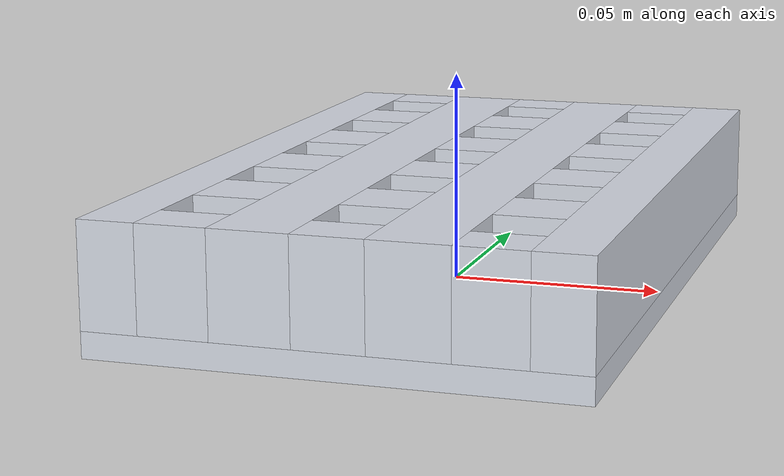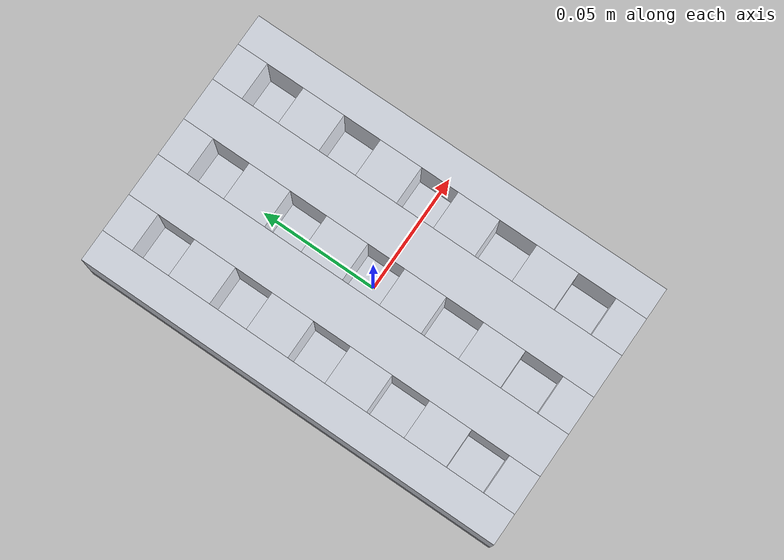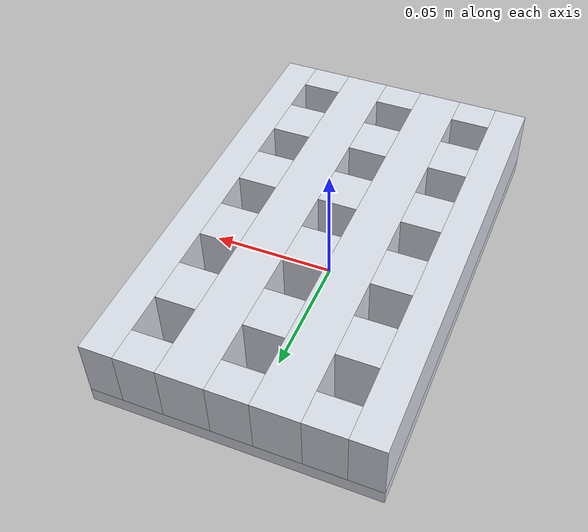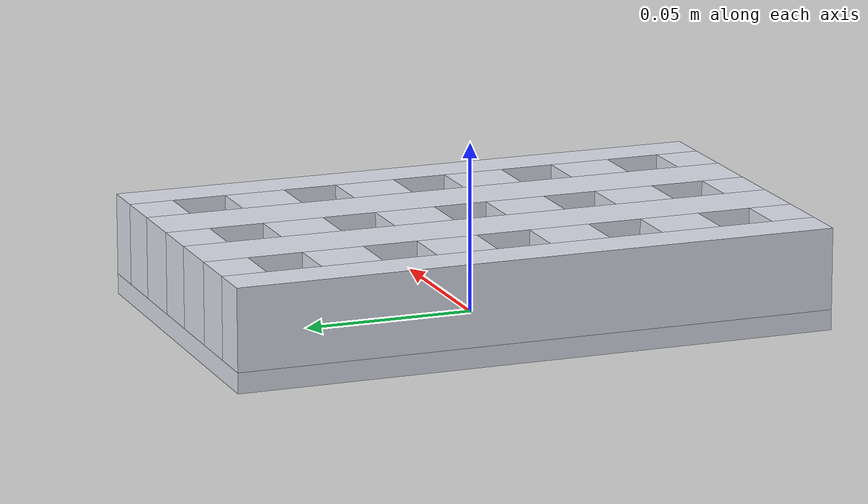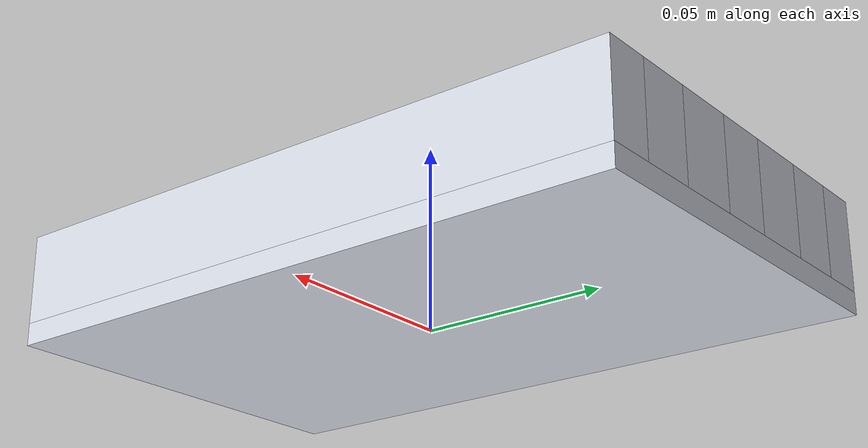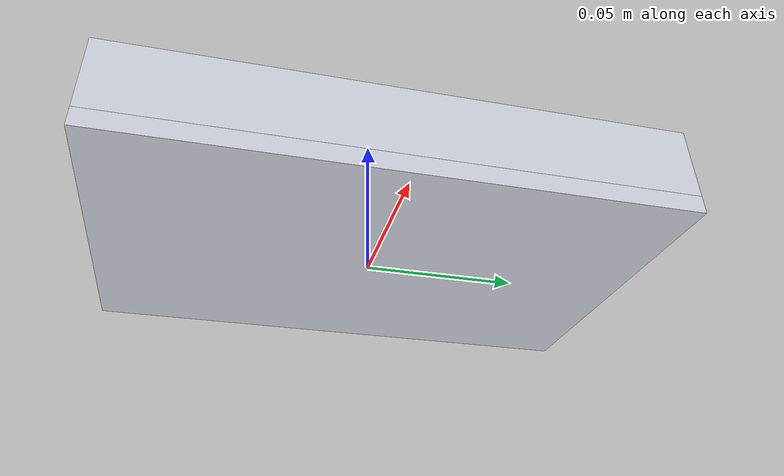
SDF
<?xml version="1.0"?>
<sdf version="1.9">
  <model name="bit_tray">
    <static>true</static>
    <link name="link">
      <inertial>
        <pose>0 0 0.0150 0 0 0</pose>
        <mass>0.3</mass>
        <inertia><ixx>8.146e-04</ixx><iyy>3.250e-04</iyy><izz>1.095e-03</izz><ixy>0</ixy><ixz>0</ixz><iyz>0</iyz></inertia>
      </inertial>
      <collision name="c0"><pose>0.0000 0.0000 0.0030 0 0 0</pose><geometry><box><size>0.1100 0.1780 0.0060</size></box></geometry>
        <surface><friction><ode><mu>0.8</mu><mu2>0.8</mu2></ode></friction></surface>
      </collision>
      <visual name="v0"><pose>0.0000 0.0000 0.0030 0 0 0</pose><geometry><box><size>0.1100 0.1780 0.0060</size></box></geometry>
        <material><ambient>0.72 0.74 0.78 1</ambient><diffuse>0.86 0.88 0.92 1</diffuse><specular>0.3 0.3 0.3 1</specular></material>
      </visual>
      <collision name="c1"><pose>-0.0485 0.0000 0.0180 0 0 0</pose><geometry><box><size>0.0130 0.1780 0.0240</size></box></geometry>
        <surface><friction><ode><mu>0.8</mu><mu2>0.8</mu2></ode></friction></surface>
      </collision>
      <visual name="v1"><pose>-0.0485 0.0000 0.0180 0 0 0</pose><geometry><box><size>0.0130 0.1780 0.0240</size></box></geometry>
        <material><ambient>0.72 0.74 0.78 1</ambient><diffuse>0.86 0.88 0.92 1</diffuse><specular>0.3 0.3 0.3 1</specular></material>
      </visual>
      <collision name="c2"><pose>-0.0170 0.0000 0.0180 0 0 0</pose><geometry><box><size>0.0180 0.1780 0.0240</size></box></geometry>
        <surface><friction><ode><mu>0.8</mu><mu2>0.8</mu2></ode></friction></surface>
      </collision>
      <visual name="v2"><pose>-0.0170 0.0000 0.0180 0 0 0</pose><geometry><box><size>0.0180 0.1780 0.0240</size></box></geometry>
        <material><ambient>0.72 0.74 0.78 1</ambient><diffuse>0.86 0.88 0.92 1</diffuse><specular>0.3 0.3 0.3 1</specular></material>
      </visual>
      <collision name="c3"><pose>0.0170 0.0000 0.0180 0 0 0</pose><geometry><box><size>0.0180 0.1780 0.0240</size></box></geometry>
        <surface><friction><ode><mu>0.8</mu><mu2>0.8</mu2></ode></friction></surface>
      </collision>
      <visual name="v3"><pose>0.0170 0.0000 0.0180 0 0 0</pose><geometry><box><size>0.0180 0.1780 0.0240</size></box></geometry>
        <material><ambient>0.72 0.74 0.78 1</ambient><diffuse>0.86 0.88 0.92 1</diffuse><specular>0.3 0.3 0.3 1</specular></material>
      </visual>
      <collision name="c4"><pose>0.0485 0.0000 0.0180 0 0 0</pose><geometry><box><size>0.0130 0.1780 0.0240</size></box></geometry>
        <surface><friction><ode><mu>0.8</mu><mu2>0.8</mu2></ode></friction></surface>
      </collision>
      <visual name="v4"><pose>0.0485 0.0000 0.0180 0 0 0</pose><geometry><box><size>0.0130 0.1780 0.0240</size></box></geometry>
        <material><ambient>0.72 0.74 0.78 1</ambient><diffuse>0.86 0.88 0.92 1</diffuse><specular>0.3 0.3 0.3 1</specular></material>
      </visual>
      <collision name="c5"><pose>-0.0340 -0.0825 0.0180 0 0 0</pose><geometry><box><size>0.0160 0.0130 0.0240</size></box></geometry>
        <surface><friction><ode><mu>0.8</mu><mu2>0.8</mu2></ode></friction></surface>
      </collision>
      <visual name="v5"><pose>-0.0340 -0.0825 0.0180 0 0 0</pose><geometry><box><size>0.0160 0.0130 0.0240</size></box></geometry>
        <material><ambient>0.72 0.74 0.78 1</ambient><diffuse>0.86 0.88 0.92 1</diffuse><specular>0.3 0.3 0.3 1</specular></material>
      </visual>
      <collision name="c6"><pose>-0.0340 -0.0510 0.0180 0 0 0</pose><geometry><box><size>0.0160 0.0180 0.0240</size></box></geometry>
        <surface><friction><ode><mu>0.8</mu><mu2>0.8</mu2></ode></friction></surface>
      </collision>
      <visual name="v6"><pose>-0.0340 -0.0510 0.0180 0 0 0</pose><geometry><box><size>0.0160 0.0180 0.0240</size></box></geometry>
        <material><ambient>0.72 0.74 0.78 1</ambient><diffuse>0.86 0.88 0.92 1</diffuse><specular>0.3 0.3 0.3 1</specular></material>
      </visual>
      <collision name="c7"><pose>-0.0340 -0.0170 0.0180 0 0 0</pose><geometry><box><size>0.0160 0.0180 0.0240</size></box></geometry>
        <surface><friction><ode><mu>0.8</mu><mu2>0.8</mu2></ode></friction></surface>
      </collision>
      <visual name="v7"><pose>-0.0340 -0.0170 0.0180 0 0 0</pose><geometry><box><size>0.0160 0.0180 0.0240</size></box></geometry>
        <material><ambient>0.72 0.74 0.78 1</ambient><diffuse>0.86 0.88 0.92 1</diffuse><specular>0.3 0.3 0.3 1</specular></material>
      </visual>
      <collision name="c8"><pose>-0.0340 0.0170 0.0180 0 0 0</pose><geometry><box><size>0.0160 0.0180 0.0240</size></box></geometry>
        <surface><friction><ode><mu>0.8</mu><mu2>0.8</mu2></ode></friction></surface>
      </collision>
      <visual name="v8"><pose>-0.0340 0.0170 0.0180 0 0 0</pose><geometry><box><size>0.0160 0.0180 0.0240</size></box></geometry>
        <material><ambient>0.72 0.74 0.78 1</ambient><diffuse>0.86 0.88 0.92 1</diffuse><specular>0.3 0.3 0.3 1</specular></material>
      </visual>
      <collision name="c9"><pose>-0.0340 0.0510 0.0180 0 0 0</pose><geometry><box><size>0.0160 0.0180 0.0240</size></box></geometry>
        <surface><friction><ode><mu>0.8</mu><mu2>0.8</mu2></ode></friction></surface>
      </collision>
      <visual name="v9"><pose>-0.0340 0.0510 0.0180 0 0 0</pose><geometry><box><size>0.0160 0.0180 0.0240</size></box></geometry>
        <material><ambient>0.72 0.74 0.78 1</ambient><diffuse>0.86 0.88 0.92 1</diffuse><specular>0.3 0.3 0.3 1</specular></material>
      </visual>
      <collision name="c10"><pose>-0.0340 0.0825 0.0180 0 0 0</pose><geometry><box><size>0.0160 0.0130 0.0240</size></box></geometry>
        <surface><friction><ode><mu>0.8</mu><mu2>0.8</mu2></ode></friction></surface>
      </collision>
      <visual name="v10"><pose>-0.0340 0.0825 0.0180 0 0 0</pose><geometry><box><size>0.0160 0.0130 0.0240</size></box></geometry>
        <material><ambient>0.72 0.74 0.78 1</ambient><diffuse>0.86 0.88 0.92 1</diffuse><specular>0.3 0.3 0.3 1</specular></material>
      </visual>
      <collision name="c11"><pose>0.0000 -0.0825 0.0180 0 0 0</pose><geometry><box><size>0.0160 0.0130 0.0240</size></box></geometry>
        <surface><friction><ode><mu>0.8</mu><mu2>0.8</mu2></ode></friction></surface>
      </collision>
      <visual name="v11"><pose>0.0000 -0.0825 0.0180 0 0 0</pose><geometry><box><size>0.0160 0.0130 0.0240</size></box></geometry>
        <material><ambient>0.72 0.74 0.78 1</ambient><diffuse>0.86 0.88 0.92 1</diffuse><specular>0.3 0.3 0.3 1</specular></material>
      </visual>
      <collision name="c12"><pose>0.0000 -0.0510 0.0180 0 0 0</pose><geometry><box><size>0.0160 0.0180 0.0240</size></box></geometry>
        <surface><friction><ode><mu>0.8</mu><mu2>0.8</mu2></ode></friction></surface>
      </collision>
      <visual name="v12"><pose>0.0000 -0.0510 0.0180 0 0 0</pose><geometry><box><size>0.0160 0.0180 0.0240</size></box></geometry>
        <material><ambient>0.72 0.74 0.78 1</ambient><diffuse>0.86 0.88 0.92 1</diffuse><specular>0.3 0.3 0.3 1</specular></material>
      </visual>
      <collision name="c13"><pose>0.0000 -0.0170 0.0180 0 0 0</pose><geometry><box><size>0.0160 0.0180 0.0240</size></box></geometry>
        <surface><friction><ode><mu>0.8</mu><mu2>0.8</mu2></ode></friction></surface>
      </collision>
      <visual name="v13"><pose>0.0000 -0.0170 0.0180 0 0 0</pose><geometry><box><size>0.0160 0.0180 0.0240</size></box></geometry>
        <material><ambient>0.72 0.74 0.78 1</ambient><diffuse>0.86 0.88 0.92 1</diffuse><specular>0.3 0.3 0.3 1</specular></material>
      </visual>
      <collision name="c14"><pose>0.0000 0.0170 0.0180 0 0 0</pose><geometry><box><size>0.0160 0.0180 0.0240</size></box></geometry>
        <surface><friction><ode><mu>0.8</mu><mu2>0.8</mu2></ode></friction></surface>
      </collision>
      <visual name="v14"><pose>0.0000 0.0170 0.0180 0 0 0</pose><geometry><box><size>0.0160 0.0180 0.0240</size></box></geometry>
        <material><ambient>0.72 0.74 0.78 1</ambient><diffuse>0.86 0.88 0.92 1</diffuse><specular>0.3 0.3 0.3 1</specular></material>
      </visual>
      <collision name="c15"><pose>0.0000 0.0510 0.0180 0 0 0</pose><geometry><box><size>0.0160 0.0180 0.0240</size></box></geometry>
        <surface><friction><ode><mu>0.8</mu><mu2>0.8</mu2></ode></friction></surface>
      </collision>
      <visual name="v15"><pose>0.0000 0.0510 0.0180 0 0 0</pose><geometry><box><size>0.0160 0.0180 0.0240</size></box></geometry>
        <material><ambient>0.72 0.74 0.78 1</ambient><diffuse>0.86 0.88 0.92 1</diffuse><specular>0.3 0.3 0.3 1</specular></material>
      </visual>
      <collision name="c16"><pose>0.0000 0.0825 0.0180 0 0 0</pose><geometry><box><size>0.0160 0.0130 0.0240</size></box></geometry>
        <surface><friction><ode><mu>0.8</mu><mu2>0.8</mu2></ode></friction></surface>
      </collision>
      <visual name="v16"><pose>0.0000 0.0825 0.0180 0 0 0</pose><geometry><box><size>0.0160 0.0130 0.0240</size></box></geometry>
        <material><ambient>0.72 0.74 0.78 1</ambient><diffuse>0.86 0.88 0.92 1</diffuse><specular>0.3 0.3 0.3 1</specular></material>
      </visual>
      <collision name="c17"><pose>0.0340 -0.0825 0.0180 0 0 0</pose><geometry><box><size>0.0160 0.0130 0.0240</size></box></geometry>
        <surface><friction><ode><mu>0.8</mu><mu2>0.8</mu2></ode></friction></surface>
      </collision>
      <visual name="v17"><pose>0.0340 -0.0825 0.0180 0 0 0</pose><geometry><box><size>0.0160 0.0130 0.0240</size></box></geometry>
        <material><ambient>0.72 0.74 0.78 1</ambient><diffuse>0.86 0.88 0.92 1</diffuse><specular>0.3 0.3 0.3 1</specular></material>
      </visual>
      <collision name="c18"><pose>0.0340 -0.0510 0.0180 0 0 0</pose><geometry><box><size>0.0160 0.0180 0.0240</size></box></geometry>
        <surface><friction><ode><mu>0.8</mu><mu2>0.8</mu2></ode></friction></surface>
      </collision>
      <visual name="v18"><pose>0.0340 -0.0510 0.0180 0 0 0</pose><geometry><box><size>0.0160 0.0180 0.0240</size></box></geometry>
        <material><ambient>0.72 0.74 0.78 1</ambient><diffuse>0.86 0.88 0.92 1</diffuse><specular>0.3 0.3 0.3 1</specular></material>
      </visual>
      <collision name="c19"><pose>0.0340 -0.0170 0.0180 0 0 0</pose><geometry><box><size>0.0160 0.0180 0.0240</size></box></geometry>
        <surface><friction><ode><mu>0.8</mu><mu2>0.8</mu2></ode></friction></surface>
      </collision>
      <visual name="v19"><pose>0.0340 -0.0170 0.0180 0 0 0</pose><geometry><box><size>0.0160 0.0180 0.0240</size></box></geometry>
        <material><ambient>0.72 0.74 0.78 1</ambient><diffuse>0.86 0.88 0.92 1</diffuse><specular>0.3 0.3 0.3 1</specular></material>
      </visual>
      <collision name="c20"><pose>0.0340 0.0170 0.0180 0 0 0</pose><geometry><box><size>0.0160 0.0180 0.0240</size></box></geometry>
        <surface><friction><ode><mu>0.8</mu><mu2>0.8</mu2></ode></friction></surface>
      </collision>
      <visual name="v20"><pose>0.0340 0.0170 0.0180 0 0 0</pose><geometry><box><size>0.0160 0.0180 0.0240</size></box></geometry>
        <material><ambient>0.72 0.74 0.78 1</ambient><diffuse>0.86 0.88 0.92 1</diffuse><specular>0.3 0.3 0.3 1</specular></material>
      </visual>
      <collision name="c21"><pose>0.0340 0.0510 0.0180 0 0 0</pose><geometry><box><size>0.0160 0.0180 0.0240</size></box></geometry>
        <surface><friction><ode><mu>0.8</mu><mu2>0.8</mu2></ode></friction></surface>
      </collision>
      <visual name="v21"><pose>0.0340 0.0510 0.0180 0 0 0</pose><geometry><box><size>0.0160 0.0180 0.0240</size></box></geometry>
        <material><ambient>0.72 0.74 0.78 1</ambient><diffuse>0.86 0.88 0.92 1</diffuse><specular>0.3 0.3 0.3 1</specular></material>
      </visual>
      <collision name="c22"><pose>0.0340 0.0825 0.0180 0 0 0</pose><geometry><box><size>0.0160 0.0130 0.0240</size></box></geometry>
        <surface><friction><ode><mu>0.8</mu><mu2>0.8</mu2></ode></friction></surface>
      </collision>
      <visual name="v22"><pose>0.0340 0.0825 0.0180 0 0 0</pose><geometry><box><size>0.0160 0.0130 0.0240</size></box></geometry>
        <material><ambient>0.72 0.74 0.78 1</ambient><diffuse>0.86 0.88 0.92 1</diffuse><specular>0.3 0.3 0.3 1</specular></material>
      </visual>
    </link>
  </model>
</sdf>
